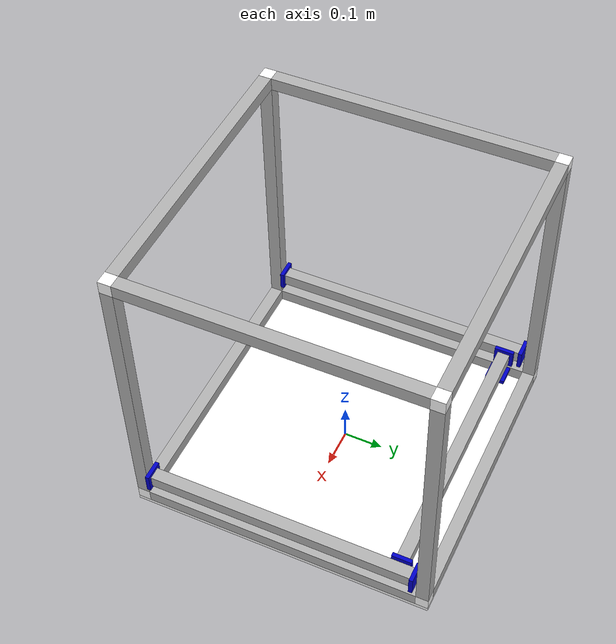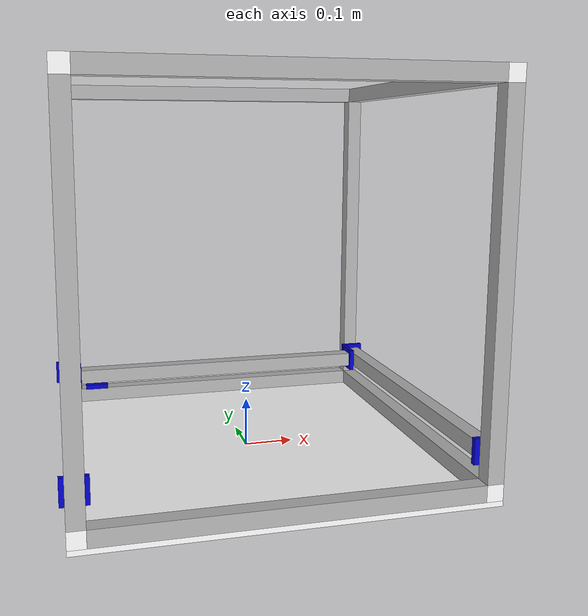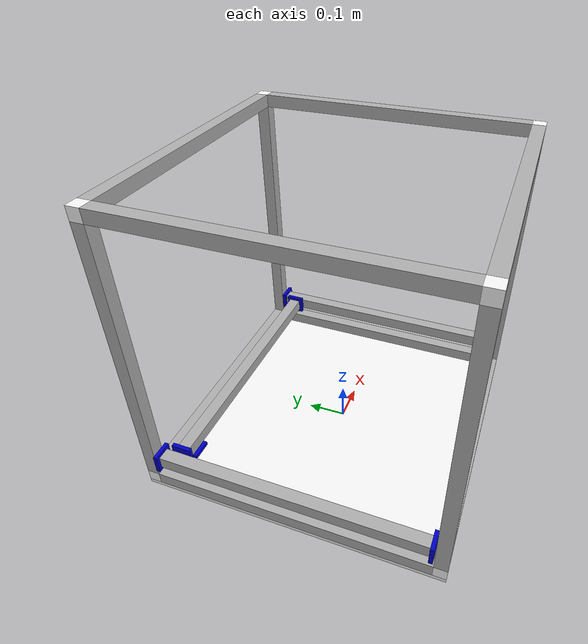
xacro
<?xml version="1.0"?>
<robot name="SmartGripper" xmlns:xacro="http://ros.org/wiki/xacro">

  <xacro:property name="pi" value="3.1415" />
  <xacro:property name="profile_size" value="0.032" />
  <xacro:property name="profile_length" value="0.7" />
  <xacro:property name="profile_mass" value="0.3" />
  <xacro:property name="base_size" value="0.01" />
  <xacro:property name="carret_size" value="0.05" />
  <xacro:property name="carret_width" value="0.01" />
  <xacro:property name="carret_offset" value="${profile_size/2 + carret_width + 0.002}" />
  <xacro:property name="link_z_length" value="${profile_length - carret_offset}" />
  <xacro:property name="link_y_length" value="${profile_length - carret_offset}" />

  <material name="blue">
    <color rgba="0 0 0.8 1"/>
  </material>

  <material name="black">
    <color rgba="0 0 0 1"/>
  </material>

  <material name="white">
    <color rgba="1 1 1 1"/>
  </material>

  <material name="gray">
    <color rgba="0.7 0.7 0.7 1"/>
  </material>

  <xacro:macro name="default_inertial" params="mass">
    <inertial>
      <mass value="${mass}" />
      <inertia ixx="1.0" ixy="0.0" ixz="0.0" iyy="1.0" iyz="0.0" izz="1.0" />
    </inertial>
  </xacro:macro>

  <link name="base_link">
    <visual>
      <geometry>
        <box size="${profile_length+2*profile_size} ${profile_length+2*profile_size} ${base_size}"/>
      </geometry>
      <material name="white"/>
    </visual>
    <collision>
      <geometry>
        <box size="${profile_length+2*profile_size} ${profile_length+2*profile_size} ${base_size}"/>
      </geometry>
    </collision>
    <xacro:default_inertial mass="1"/>
  </link>

  <xacro:macro name="frame_corner" params="num parent xyz">
    <link name="frame_c${num}">
      <visual>
        <geometry>
          <box size="${profile_size} ${profile_size} ${profile_size}"/>
        </geometry>
        <material name="white"/>
      </visual>
      <collision>
        <geometry>
          <box size="${profile_size} ${profile_size} ${profile_size}"/>
        </geometry>
      </collision>
      <xacro:default_inertial mass="0"/>
    </link>
    <joint name="${parent}_to_frame_c${num}" type="fixed">
      <parent link="${parent}"/>
      <child link="frame_c${num}"/>
      <origin xyz="${xyz}" />
    </joint>
  </xacro:macro>

  <xacro:macro name="frame_link" params="num len parent xyz rpy">
    <link name="frame_l${num}">
      <visual>
        <geometry>
          <box size="${profile_size} ${profile_size} ${len}"/>
        </geometry>
        <material name="gray"/>
      </visual>
      <collision>
        <geometry>
          <box size="${profile_size} ${profile_size} ${len}"/>
        </geometry>
      </collision>
      <xacro:default_inertial mass="${profile_mass}"/>
    </link>
    <joint name="${parent}_to_frame_l${num}" type="fixed">
      <parent link="${parent}"/>
      <child link="frame_l${num}"/>
      <origin xyz="${xyz}" rpy="${rpy}"/>
    </joint>
  </xacro:macro>

  <xacro:macro name="carret" params="num">
    <link name="carret_${num}">
      <visual>
        <geometry>
          <box size="${carret_size} ${carret_size} ${carret_width}"/>
        </geometry>
        <origin xyz="0 0 ${carret_width/2}"/>
        <material name="blue"/>
      </visual>
      <collision>
        <geometry>
          <box size="${carret_size} ${carret_size} ${carret_width}"/>
        </geometry>
        <origin xyz="0 0 ${carret_width/2}"/>
      </collision>
      <xacro:default_inertial mass="0"/>
    </link>
  </xacro:macro>

  <xacro:frame_corner num="1" parent="base_link" xyz="${-(profile_length+profile_size)/2} ${-(profile_length+profile_size)/2} ${(base_size+profile_size)/2}" />
  <xacro:frame_corner num="2" parent="base_link" xyz="${(profile_length+profile_size)/2} ${-(profile_length+profile_size)/2} ${(base_size+profile_size)/2}" />
  <xacro:frame_corner num="3" parent="base_link" xyz="${-(profile_length+profile_size)/2} ${(profile_length+profile_size)/2} ${(base_size+profile_size)/2}" />
  <xacro:frame_corner num="4" parent="base_link" xyz="${(profile_length+profile_size)/2} ${(profile_length+profile_size)/2} ${(base_size+profile_size)/2}" />

  <xacro:frame_link num="1" parent="frame_c1" len="${profile_length}" xyz="0 0 ${(profile_length+profile_size)/2}" rpy="0 0 0"/>
  <xacro:frame_link num="2" parent="frame_c2" len="${profile_length}" xyz="0 0 ${(profile_length+profile_size)/2}" rpy="0 0 0"/>
  <xacro:frame_link num="3" parent="frame_c3" len="${profile_length}" xyz="0 0 ${(profile_length+profile_size)/2}" rpy="0 0 0"/>
  <xacro:frame_link num="4" parent="frame_c4" len="${profile_length}" xyz="0 0 ${(profile_length+profile_size)/2}" rpy="0 0 0"/>

  <xacro:frame_link num="5" parent="frame_c1" len="${profile_length}" xyz="${(profile_length+profile_size)/2} 0 0" rpy="0 ${pi/2} 0"/>
  <xacro:frame_link num="6" parent="frame_c2" len="${profile_length}" xyz="0 ${(profile_length+profile_size)/2} 0" rpy="${pi/2} 0 0"/>
  <xacro:frame_link num="7" parent="frame_c3" len="${profile_length}" xyz="${(profile_length+profile_size)/2} 0 0" rpy="0 ${pi/2} 0"/>
  <xacro:frame_link num="8" parent="frame_c1" len="${profile_length}" xyz="0 ${(profile_length+profile_size)/2} 0" rpy="${pi/2} 0 0"/>

  <xacro:frame_corner num="5" parent="frame_l1" xyz="0 0 ${(profile_length+profile_size)/2}"/>
  <xacro:frame_corner num="6" parent="frame_l2" xyz="0 0 ${(profile_length+profile_size)/2}"/>
  <xacro:frame_corner num="7" parent="frame_l3" xyz="0 0 ${(profile_length+profile_size)/2}"/>
  <xacro:frame_corner num="8" parent="frame_l4" xyz="0 0 ${(profile_length+profile_size)/2}"/>

  <xacro:frame_link num="9"  parent="frame_c5" len="${profile_length}" xyz="${(profile_length+profile_size)/2} 0 0" rpy="0 ${pi/2} 0"/>
  <xacro:frame_link num="10" parent="frame_c6" len="${profile_length}" xyz="0 ${(profile_length+profile_size)/2} 0" rpy="${pi/2} 0 0"/>
  <xacro:frame_link num="11" parent="frame_c7" len="${profile_length}" xyz="${(profile_length+profile_size)/2} 0 0" rpy="0 ${pi/2} 0"/>
  <xacro:frame_link num="12" parent="frame_c5" len="${profile_length}" xyz="0 ${(profile_length+profile_size)/2} 0" rpy="${pi/2} 0 0"/>

  <xacro:carret num="z1"/>
  <xacro:carret num="z2"/>
  <xacro:carret num="z3"/>
  <xacro:carret num="z4"/>

  <xacro:frame_link num="z1" parent="carret_z1" len="${link_z_length}" xyz="0 0 ${-link_z_length/2}" rpy="0 0 0"/>
  <xacro:frame_link num="z2" parent="carret_z2" len="${link_z_length}" xyz="0 0 ${-link_z_length/2}" rpy="0 0 0"/>

  <joint name="Z" type="prismatic">
    <parent link="frame_l1"/>
    <child link="carret_z1"/>
    <limit effort="1000.0" lower="0" upper="0.6" velocity="0.5"/>
    <origin rpy="${pi/2} ${-pi/2} 0" xyz="0 ${carret_offset} -0.3"/>
  </joint>

  <joint name="carret_z1_to_carret_z2" type="fixed">
    <parent link="carret_z1"/>
    <child link="carret_z2"/>
    <origin xyz="0 ${-profile_length-profile_size} 0"/>
  </joint>

  <joint name="link_z1_to_carret_z3" type="fixed">
    <parent link="frame_lz1"/>
    <child link="carret_z3"/>
    <origin rpy="${pi} 0 0" xyz="0 0 ${-link_z_length/2}"/>
  </joint>

  <joint name="link_z2_to_carret_z4" type="fixed">
    <parent link="frame_lz2"/>
    <child link="carret_z4"/>
    <origin rpy="${pi} 0 0" xyz="0 0 ${-link_z_length/2}"/>
  </joint>

  <xacro:carret num="y1"/>
  <xacro:carret num="y2"/>
  <xacro:frame_link num="y" parent="carret_y1" len="${link_y_length}" xyz="0 0 ${-link_y_length/2}" rpy="0 0 0"/>

  <joint name="Y" type="prismatic">
    <parent link="frame_lz2"/>
    <child link="carret_y1"/>
    <limit effort="1000.0" lower="0" upper="0.6" velocity="0.5"/>
    <origin rpy="${pi/2} ${-pi/2} 0" xyz="0 ${carret_offset} -0.3"/>
  </joint>
  <joint name="link_y2_to_carret_y2" type="fixed">
    <parent link="frame_ly"/>
    <child link="carret_y2"/>
    <origin rpy="${pi} 0 0" xyz="0 0 ${-link_y_length/2}"/>
  </joint>

  <xacro:carret num="x"/>
  <joint name="X" type="prismatic">
    <parent link="frame_ly"/>
    <child link="carret_x"/>
    <limit effort="1000.0" lower="0" upper="0.6" velocity="0.5"/>
    <origin rpy="${pi/2} ${-pi/2} 0" xyz="0 ${carret_offset} -0.3"/>
  </joint>

  <gazebo>
    <plugin name="gazebo_ros_control" filename="libgazebo_ros_control.so">
      <robotNamespace>/</robotNamespace>
    </plugin>
  </gazebo>

</robot>
